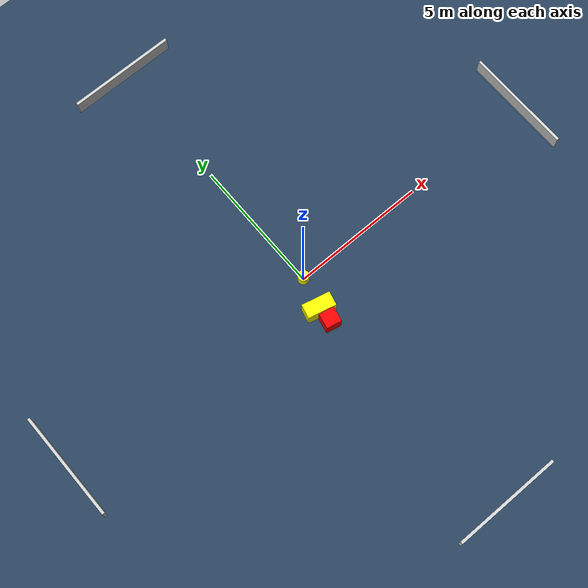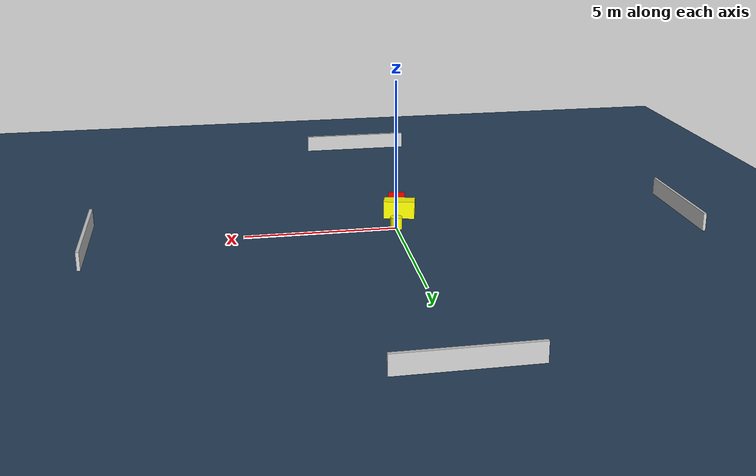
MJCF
<?xml version="1.0" ?>
<mujoco model="generated_environment">
  <option timestep="0.01" integrator="RK4" cone="elliptic"/>
  <default>
    <geom density="1"/>
  </default>
  <asset>
    <texture builtin="gradient" height="3072" name="skybox" rgb1="0.3 0.5 0.7" rgb2="0 0 0" type="skybox" width="512"/>
    <texture builtin="checker" height="300" name="groundplane" rgb1="0.2 0.3 0.4" rgb2="0.1 0.2 0.3" type="2d" width="300"/>
    <material name="groundplane" reflectance="0.2" texrepeat="5 5" texture="groundplane"/>
  </asset>
  <worldbody>
    <light dir="0 0 -1" directional="true" pos="0 0 1.5"/>
    <geom condim="3" friction="0.5 0.005 0.001" material="groundplane" name="floor" pos="0 0 0" size="0 0 0.05" type="plane"/>
    <body name="walls">
      <geom name="wall_1" condim="4" pos="-10.0 0.0 0.3" rgba="0.800000011920929 0.800000011920929 0.800000011920929 1.0" size="0.05 2.0 0.3" type="box"/>
      <geom name="wall_2" condim="4" pos="10.0 0.0 0.3" rgba="0.800000011920929 0.800000011920929 0.800000011920929 1.0" size="0.05 2.0 0.3" type="box"/>
      <geom name="wall_3" condim="4" pos="0.0 -10.0 0.3" rgba="0.800000011920929 0.800000011920929 0.800000011920929 1.0" size="2.0 0.05 0.3" type="box"/>
      <geom name="wall_4" condim="4" pos="0.0 10.0 0.3" rgba="0.800000011920929 0.800000011920929 0.800000011920929 1.0" size="2.0 0.05 0.3" type="box"/>
    </body>
    <body name="robot">
      <joint name="joint_x" type="slide" pos="0 0 0" axis="1 0 0"/>
      <joint name="joint_y" type="slide" pos="0 0 0" axis="0 1 0"/>
      <geom name="robot" type="cylinder" pos="0.0 0.0 0.2" size="0.2 0.2 0.0" mass="5.0" friction="1.0 0.005 0.0001" condim="4" rgba="1.0 1.0 0.0 1.0"/>
    </body>
    <body name="obstacle_1_movable">
      <geom name="obstacle_1_movable" condim="4" pos="-0.31614744642694576 -1.1740797610538118 0.3" euler="0 0 256.58248944857024" friction="0.0 0.005 0.001" rgba="1.0 1.0 0.0 1.0" size="0.2600977271974897 0.5264554561280526 0.3" type="box" mass="0.1"/>
      <joint type="free"/>
    </body>
    <body name="obstacle_2_static">
      <geom name="obstacle_2_static" condim="4" pos="-0.3165153623937694 -1.7519247445784751 0.3" euler="0 0 78.16918635330057" friction="0.0 0.005 0.001" rgba="1.0 0.0 0.0 1.0" size="0.2799841660222158 0.280670983240508 0.3" type="box"/>
    </body>
  </worldbody>
  <actuator>
    <motor name="actuator_x" joint="joint_x" gear="1" ctrlrange="-1 1"/>
    <motor name="actuator_y" joint="joint_y" gear="1" ctrlrange="-1 1"/>
  </actuator>
</mujoco>
